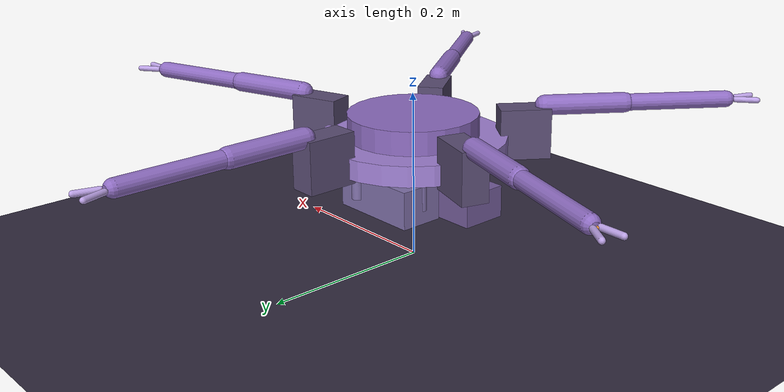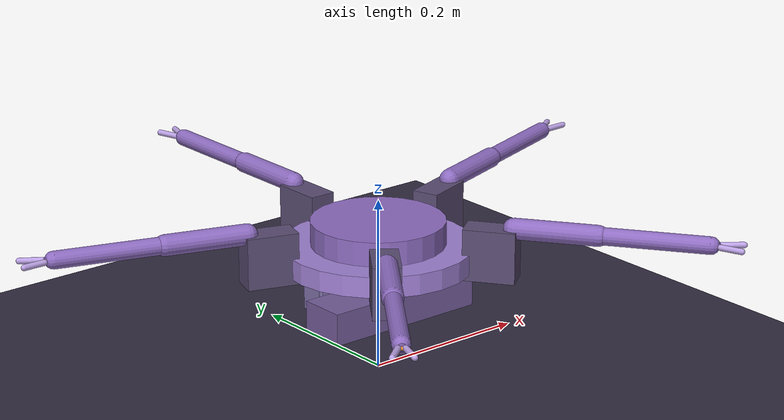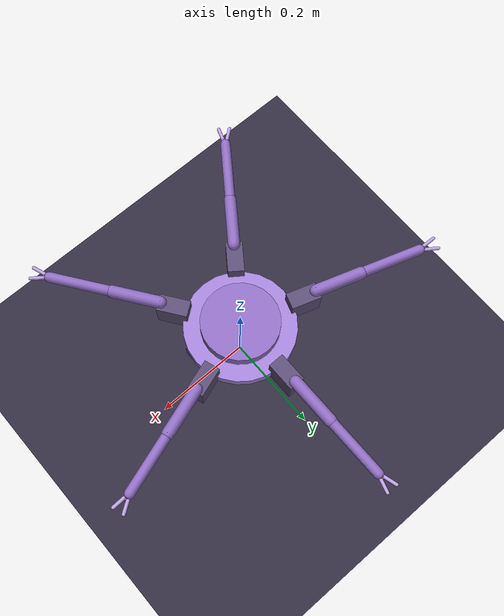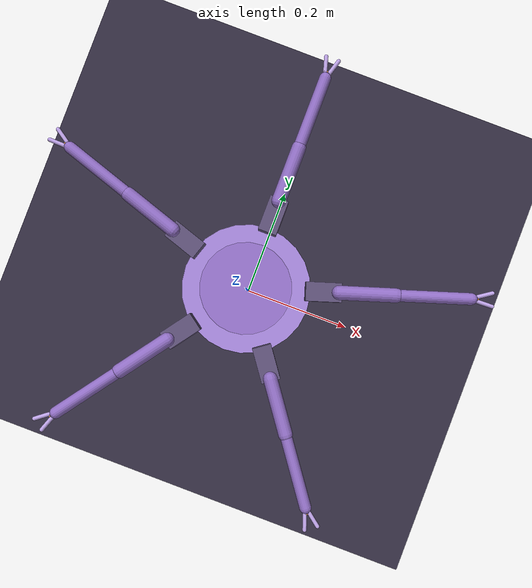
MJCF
<mujoco model="pebble">
  <!-- AUTO-GENERATED by sim/build_mjcf.py from cad/params.yaml (params 0.1/D064) — edit THOSE -->
  <option timestep="0.002" integrator="implicitfast"/>
  <visual>
    <global offwidth="720" offheight="480"/>
    <headlight ambient="0.4 0.4 0.45" diffuse="0.7 0.7 0.7"/>
    <quality shadowsize="2048"/>
  </visual>
  <asset>
    <texture name="grid" type="2d" builtin="checker" rgb1="0.16 0.14 0.20" rgb2="0.22 0.19 0.29" width="300" height="300"/>
    <material name="grid" texture="grid" texrepeat="12 12" reflectance="0.05"/>
  </asset>
  <worldbody>
    <light pos="0.5 -0.5 1.5" dir="-0.3 0.3 -1" diffuse="0.8 0.8 0.8"/>
    <geom name="floor" type="plane" size="6 6 0.1" material="grid" friction="0.8 0.005 0.0001"/>
    <body name="torso" pos="0 0 0.1194">
      <freejoint/>
      <!-- the torso's mass, CoM and inertia: sim/mass_budget.json (mass_audit's pose table); the geoms below carry none -->
      <inertial pos="-0.00221 -0.00463 -0.00318" mass="1.5550" fullinertia="4.726687e-03 5.545358e-03 6.800901e-03 -9.472300e-05 -1.576910e-04 -2.392510e-04"/>
      <geom name="belly_tub" type="box" size="0.098700 0.027400 0.018700" pos="0.001200 -0.020000 -0.036700" mass="0" friction="0.8 0.005 0.0001" rgba="0.45 0.36 0.60 1"/>
      <geom name="belly_shelf" type="box" size="0.055075 0.026050 0.022200" pos="-0.001125 0.038250 -0.032200" mass="0" friction="0.8 0.005 0.0001" rgba="0.50 0.44 0.66 1"/>
      <geom name="belly_shelf_post0" type="cylinder" size="0.007000 0.014650" pos="-0.050000 0.034000 -0.024650" mass="0" friction="0.8 0.005 0.0001" rgba="0.50 0.44 0.66 1"/>
      <geom name="belly_shelf_post1" type="cylinder" size="0.007000 0.014650" pos="0.050000 0.034000 -0.024650" mass="0" friction="0.8 0.005 0.0001" rgba="0.50 0.44 0.66 1"/>
      <geom name="belly_shelf_post2" type="cylinder" size="0.007000 0.014650" pos="0.026000 0.064000 -0.024650" mass="0" friction="0.8 0.005 0.0001" rgba="0.50 0.44 0.66 1"/>
      <geom type="cylinder" size="0.1100 0.012" pos="0 0 0.018" mass="0" rgba="0.62 0.50 0.82 1"/>
      <geom type="cylinder" size="0.0770 0.014" pos="0 0 0.044" mass="0" rgba="0.55 0.42 0.75 1"/>

      <body name="coxa0" pos="0.0000 0.1100 0" euler="0 0 90">
        <joint name="yaw0" type="hinge" axis="0 0 1" range="-40 40" damping="0.6255" armature="0.005"/>
        <geom type="box" size="0.030 0.016 0.030" pos="0.020 0 0.030" mass="0.0839" rgba="0.35 0.30 0.45 1"/>
        <body name="femur0" pos="0.0450 0 0.0610">
          <joint name="hip0" type="hinge" axis="0 -1 0" range="-70 90" damping="0.6255" armature="0.005"/>
          <geom type="capsule" fromto="0 0 0 0.0950 0 0" size="0.012" mass="0.0427" rgba="0.55 0.42 0.75 1"/>
          <body name="tibia0" pos="0.0950 0 0">
            <joint name="knee0" type="hinge" axis="0 -1 0" range="-150 -20" damping="0.6255" armature="0.005"/>
            <geom type="capsule" fromto="0 0 0 0.1242 0 0" size="0.010" mass="0.0837" rgba="0.55 0.42 0.75 1"/>
            <geom name="foot0" type="sphere" pos="0.1285 0 0" size="0.0065" mass="0.0393"
                  rgba="0.42 0.32 0.58 1" friction="0.8 0.005 0.0001" condim="4"/>
            <site name="foot_tip0" pos="0.1350 0 0" size="0.002" rgba="1 0.6 0.2 1"/>
            <geom type="capsule" fromto="0.1350 0.004 0 0.1590 0.011 0" size="0.0035"
                  mass="0.004" rgba="0.72 0.62 0.88 1" contype="0" conaffinity="0"/>
            <body name="clawb0" pos="0.1350 0 0">
              <joint name="claw0" type="hinge" axis="0 0 1" range="0 55" damping="0.0242" armature="0.001"/>
              <geom type="capsule" fromto="0 -0.004 0 0.024 -0.011 0" size="0.0035"
                    mass="0.004" rgba="0.72 0.62 0.88 1" contype="0" conaffinity="0"/>
            </body>
          </body>
        </body>
      </body>
      <body name="coxa1" pos="-0.1046 0.0340 0" euler="0 0 162">
        <joint name="yaw1" type="hinge" axis="0 0 1" range="-40 40" damping="0.6255" armature="0.005"/>
        <geom type="box" size="0.030 0.016 0.030" pos="0.020 0 0.030" mass="0.0839" rgba="0.35 0.30 0.45 1"/>
        <body name="femur1" pos="0.0450 0 0.0610">
          <joint name="hip1" type="hinge" axis="0 -1 0" range="-70 90" damping="0.6255" armature="0.005"/>
          <geom type="capsule" fromto="0 0 0 0.0950 0 0" size="0.012" mass="0.0427" rgba="0.55 0.42 0.75 1"/>
          <body name="tibia1" pos="0.0950 0 0">
            <joint name="knee1" type="hinge" axis="0 -1 0" range="-150 -20" damping="0.6255" armature="0.005"/>
            <geom type="capsule" fromto="0 0 0 0.1242 0 0" size="0.010" mass="0.0837" rgba="0.55 0.42 0.75 1"/>
            <geom name="foot1" type="sphere" pos="0.1285 0 0" size="0.0065" mass="0.0393"
                  rgba="0.42 0.32 0.58 1" friction="0.8 0.005 0.0001" condim="4"/>
            <site name="foot_tip1" pos="0.1350 0 0" size="0.002" rgba="1 0.6 0.2 1"/>
            <geom type="capsule" fromto="0.1350 0.004 0 0.1590 0.011 0" size="0.0035"
                  mass="0.004" rgba="0.72 0.62 0.88 1" contype="0" conaffinity="0"/>
            <body name="clawb1" pos="0.1350 0 0">
              <joint name="claw1" type="hinge" axis="0 0 1" range="0 55" damping="0.0242" armature="0.001"/>
              <geom type="capsule" fromto="0 -0.004 0 0.024 -0.011 0" size="0.0035"
                    mass="0.004" rgba="0.72 0.62 0.88 1" contype="0" conaffinity="0"/>
            </body>
          </body>
        </body>
      </body>
      <body name="coxa2" pos="-0.0647 -0.0890 0" euler="0 0 234">
        <joint name="yaw2" type="hinge" axis="0 0 1" range="-40 40" damping="0.6255" armature="0.005"/>
        <geom type="box" size="0.030 0.016 0.030" pos="0.020 0 0.030" mass="0.0839" rgba="0.35 0.30 0.45 1"/>
        <body name="femur2" pos="0.0450 0 0.0610">
          <joint name="hip2" type="hinge" axis="0 -1 0" range="-70 90" damping="0.6255" armature="0.005"/>
          <geom type="capsule" fromto="0 0 0 0.0950 0 0" size="0.012" mass="0.0427" rgba="0.55 0.42 0.75 1"/>
          <body name="tibia2" pos="0.0950 0 0">
            <joint name="knee2" type="hinge" axis="0 -1 0" range="-150 -20" damping="0.6255" armature="0.005"/>
            <geom type="capsule" fromto="0 0 0 0.1242 0 0" size="0.010" mass="0.0837" rgba="0.55 0.42 0.75 1"/>
            <geom name="foot2" type="sphere" pos="0.1285 0 0" size="0.0065" mass="0.0393"
                  rgba="0.42 0.32 0.58 1" friction="0.8 0.005 0.0001" condim="4"/>
            <site name="foot_tip2" pos="0.1350 0 0" size="0.002" rgba="1 0.6 0.2 1"/>
            <geom type="capsule" fromto="0.1350 0.004 0 0.1590 0.011 0" size="0.0035"
                  mass="0.004" rgba="0.72 0.62 0.88 1" contype="0" conaffinity="0"/>
            <body name="clawb2" pos="0.1350 0 0">
              <joint name="claw2" type="hinge" axis="0 0 1" range="0 55" damping="0.0242" armature="0.001"/>
              <geom type="capsule" fromto="0 -0.004 0 0.024 -0.011 0" size="0.0035"
                    mass="0.004" rgba="0.72 0.62 0.88 1" contype="0" conaffinity="0"/>
            </body>
          </body>
        </body>
      </body>
      <body name="coxa3" pos="0.0647 -0.0890 0" euler="0 0 306">
        <joint name="yaw3" type="hinge" axis="0 0 1" range="-40 40" damping="0.6255" armature="0.005"/>
        <geom type="box" size="0.030 0.016 0.030" pos="0.020 0 0.030" mass="0.0839" rgba="0.35 0.30 0.45 1"/>
        <body name="femur3" pos="0.0450 0 0.0610">
          <joint name="hip3" type="hinge" axis="0 -1 0" range="-70 90" damping="0.6255" armature="0.005"/>
          <geom type="capsule" fromto="0 0 0 0.0950 0 0" size="0.012" mass="0.0427" rgba="0.55 0.42 0.75 1"/>
          <body name="tibia3" pos="0.0950 0 0">
            <joint name="knee3" type="hinge" axis="0 -1 0" range="-150 -20" damping="0.6255" armature="0.005"/>
            <geom type="capsule" fromto="0 0 0 0.1242 0 0" size="0.010" mass="0.0837" rgba="0.55 0.42 0.75 1"/>
            <geom name="foot3" type="sphere" pos="0.1285 0 0" size="0.0065" mass="0.0393"
                  rgba="0.42 0.32 0.58 1" friction="0.8 0.005 0.0001" condim="4"/>
            <site name="foot_tip3" pos="0.1350 0 0" size="0.002" rgba="1 0.6 0.2 1"/>
            <geom type="capsule" fromto="0.1350 0.004 0 0.1590 0.011 0" size="0.0035"
                  mass="0.004" rgba="0.72 0.62 0.88 1" contype="0" conaffinity="0"/>
            <body name="clawb3" pos="0.1350 0 0">
              <joint name="claw3" type="hinge" axis="0 0 1" range="0 55" damping="0.0242" armature="0.001"/>
              <geom type="capsule" fromto="0 -0.004 0 0.024 -0.011 0" size="0.0035"
                    mass="0.004" rgba="0.72 0.62 0.88 1" contype="0" conaffinity="0"/>
            </body>
          </body>
        </body>
      </body>
      <body name="coxa4" pos="0.1046 0.0340 0" euler="0 0 378">
        <joint name="yaw4" type="hinge" axis="0 0 1" range="-40 40" damping="0.6255" armature="0.005"/>
        <geom type="box" size="0.030 0.016 0.030" pos="0.020 0 0.030" mass="0.0839" rgba="0.35 0.30 0.45 1"/>
        <body name="femur4" pos="0.0450 0 0.0610">
          <joint name="hip4" type="hinge" axis="0 -1 0" range="-70 90" damping="0.6255" armature="0.005"/>
          <geom type="capsule" fromto="0 0 0 0.0950 0 0" size="0.012" mass="0.0427" rgba="0.55 0.42 0.75 1"/>
          <body name="tibia4" pos="0.0950 0 0">
            <joint name="knee4" type="hinge" axis="0 -1 0" range="-150 -20" damping="0.6255" armature="0.005"/>
            <geom type="capsule" fromto="0 0 0 0.1242 0 0" size="0.010" mass="0.0837" rgba="0.55 0.42 0.75 1"/>
            <geom name="foot4" type="sphere" pos="0.1285 0 0" size="0.0065" mass="0.0393"
                  rgba="0.42 0.32 0.58 1" friction="0.8 0.005 0.0001" condim="4"/>
            <site name="foot_tip4" pos="0.1350 0 0" size="0.002" rgba="1 0.6 0.2 1"/>
            <geom type="capsule" fromto="0.1350 0.004 0 0.1590 0.011 0" size="0.0035"
                  mass="0.004" rgba="0.72 0.62 0.88 1" contype="0" conaffinity="0"/>
            <body name="clawb4" pos="0.1350 0 0">
              <joint name="claw4" type="hinge" axis="0 0 1" range="0 55" damping="0.0242" armature="0.001"/>
              <geom type="capsule" fromto="0 -0.004 0 0.024 -0.011 0" size="0.0035"
                    mass="0.004" rgba="0.72 0.62 0.88 1" contype="0" conaffinity="0"/>
            </body>
          </body>
        </body>
      </body>
    </body>
  </worldbody>
  <actuator>
    <position name="yaw0" joint="yaw0" kp="20" kv="0.6" forcerange="-2.9400 2.9400"/>
    <position name="hip0" joint="hip0" kp="20" kv="0.6" forcerange="-2.9400 2.9400"/>
    <position name="knee0" joint="knee0" kp="20" kv="0.6" forcerange="-2.9400 2.9400"/>
    <position name="yaw1" joint="yaw1" kp="20" kv="0.6" forcerange="-2.9400 2.9400"/>
    <position name="hip1" joint="hip1" kp="20" kv="0.6" forcerange="-2.9400 2.9400"/>
    <position name="knee1" joint="knee1" kp="20" kv="0.6" forcerange="-2.9400 2.9400"/>
    <position name="yaw2" joint="yaw2" kp="20" kv="0.6" forcerange="-2.9400 2.9400"/>
    <position name="hip2" joint="hip2" kp="20" kv="0.6" forcerange="-2.9400 2.9400"/>
    <position name="knee2" joint="knee2" kp="20" kv="0.6" forcerange="-2.9400 2.9400"/>
    <position name="yaw3" joint="yaw3" kp="20" kv="0.6" forcerange="-2.9400 2.9400"/>
    <position name="hip3" joint="hip3" kp="20" kv="0.6" forcerange="-2.9400 2.9400"/>
    <position name="knee3" joint="knee3" kp="20" kv="0.6" forcerange="-2.9400 2.9400"/>
    <position name="yaw4" joint="yaw4" kp="20" kv="0.6" forcerange="-2.9400 2.9400"/>
    <position name="hip4" joint="hip4" kp="20" kv="0.6" forcerange="-2.9400 2.9400"/>
    <position name="knee4" joint="knee4" kp="20" kv="0.6" forcerange="-2.9400 2.9400"/>
    <position name="claw0" joint="claw0" kp="0.5" kv="0.02" forcerange="-0.2300 0.2300"/>
    <position name="claw1" joint="claw1" kp="0.5" kv="0.02" forcerange="-0.2300 0.2300"/>
    <position name="claw2" joint="claw2" kp="0.5" kv="0.02" forcerange="-0.2300 0.2300"/>
    <position name="claw3" joint="claw3" kp="0.5" kv="0.02" forcerange="-0.2300 0.2300"/>
    <position name="claw4" joint="claw4" kp="0.5" kv="0.02" forcerange="-0.2300 0.2300"/>
  </actuator>
</mujoco>
